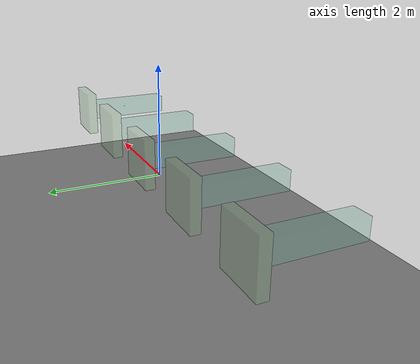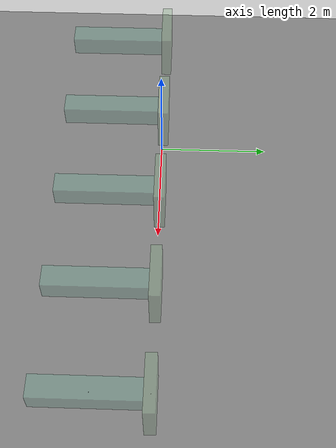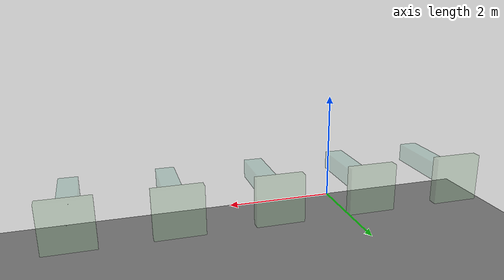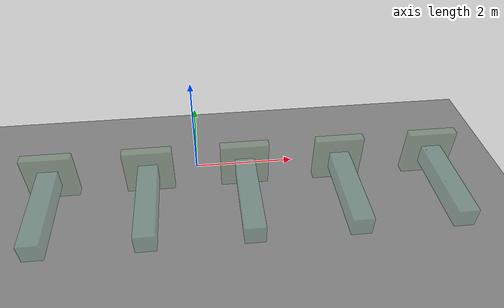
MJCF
<mujoco>
    <option>
      <flag contact="disable"/>
    </option>

    <default>
      <default class="static">
        <geom size=".5 .1 .5" rgba=".5 .7 .5 .3"/>
      </default>
      <default class="free">
        <geom type="box" size=".2" fromto="0 0 0 0 -2 0" rgba=".4 .7 .6 .3"/>
      </default>
    </default>

    <worldbody>
      <geom pos="0 0 -2" type="plane" size="10 10 .01"/>
      <light pos="0 0 20"/>

      <body name="box1" pos="-3 0 0">
        <geom type="box" class="static"/>
      </body>
      <body name="beam1" pos="-3 0 0">
        <freejoint/>
        <geom class="free"/>
      </body>

      <body name="box2" pos="-1 0 0">
        <geom type="box" class="static"/>
      </body>
      <body name="beam2" pos="-1 0 0">
        <freejoint/>
        <geom class="free"/>
      </body>

      <body name="box3" pos="1 0 0">
        <geom type="box" class="static"/>
      </body>
      <body name="beam3" pos="1 0 0">
        <freejoint/>
        <geom class="free"/>
      </body>

      <body name="box4" pos="3 0 0">
        <geom type="box" class="static"/>
      </body>
      <body name="beam4" pos="3 0 0">
        <freejoint/>
        <geom class="free"/>
      </body>

      <body name="box5" pos="5 0 0">
        <geom type="box" class="static"/>
        <site name="box5"/>
      </body>
      <body name="beam5" pos="5 0 0">
        <freejoint/>
        <geom class="free"/>
        <site name="beam5" pos="0 -1 0" euler="45 20 5"/>
      </body>
    </worldbody>

    <equality>
      <weld name="weak torques"      body1="box1" body2="beam1" torquescale="0.002"/>
      <weld name="anchor no torques" body1="box2" body2="beam2" torquescale="0" anchor="0 -2 0"/>
      <weld name="relpose"           body1="box3" body2="beam3" relpose="0 0 0 1 -.3 0 0"/>
      <weld name="relpose+anchor"    body1="box4" body2="beam4" relpose="0 0 0 1 -.3 0 0" anchor="0 0 -1"/>
      <weld name="site"              site1="box5" site2="beam5"/>
    </equality>
  </mujoco>
